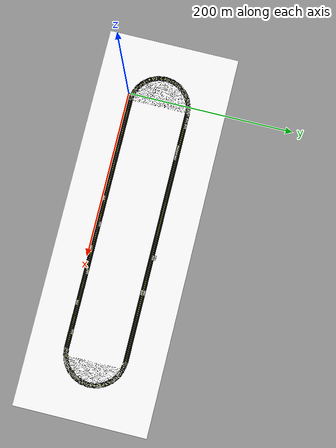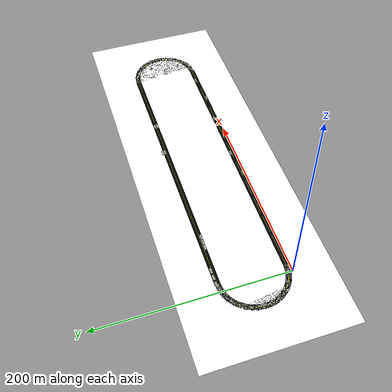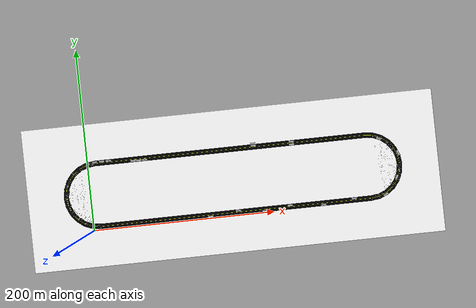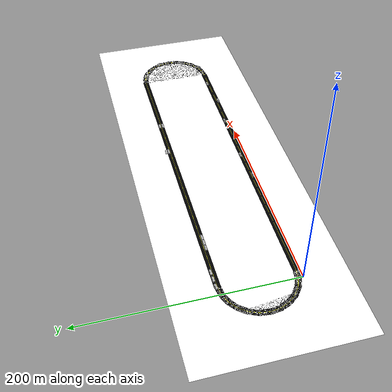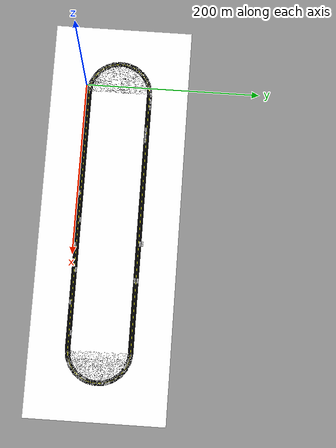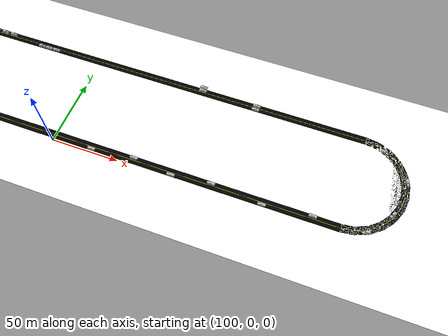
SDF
<sdf version="1.6">
 <world name="default">
  <light name="sun" type="directional">
   <pose>0 0 10 0 -0 0</pose>
   <diffuse>0.8 0.8 0.8 1</diffuse>
   <specular>0.2 0.2 0.2 1</specular>
   <attenuation>
    <range>1000</range>
    <constant>0.9</constant>
    <linear>0.01</linear>
    <quadratic>0.001</quadratic>
   </attenuation>
   <direction>-0.5 0.1 -0.9</direction>
  </light>
  <model name="LineTrack">
   <pose>0 0 1 0 -0 0</pose>
   <static>1</static>
   <link name="link">
    <inertial><mass>1000</mass></inertial>
    <collision name="collision">
     <geometry><mesh><uri>model://LineTrack/OvalTrack.dae</uri></mesh></geometry>
    </collision>
    <visual name="visual"><geometry><mesh><uri>model://LineTrack/OvalTrack.dae</uri></mesh></geometry></visual>
   </link>
  </model>
  <gravity>0 0 -9.8</gravity>
  <magnetic_field>6e-06 2.3e-05 -4.2e-05</magnetic_field>
  <atmosphere type="adiabatic"/>
  <physics name="default_physics" default="0" type="ode">
   <max_step_size>0.001</max_step_size>
   <real_time_factor>1</real_time_factor>
   <real_time_update_rate>400</real_time_update_rate>
  </physics>
  <scene><ambient>0.4 0.4 0.4 1</ambient><background>0.7 0.7 0.7 1</background><shadows>1</shadows></scene>
  <spherical_coordinates>
   <surface_model>EARTH_WGS84</surface_model>
   <latitude_deg>0</latitude_deg>
   <longitude_deg>0</longitude_deg>
   <elevation>0</elevation>
   <heading_deg>0</heading_deg>
  </spherical_coordinates>
  <model name="pickup">
   <static>1</static>
   <link name="link">
    <collision name="collision">
     <pose>0 0 0 0 0 -1.5708</pose>
     <geometry><mesh><uri>model://pickup/meshes/pickup.dae</uri></mesh></geometry>
    </collision>
    <visual name="visual">
     <pose>0 0 0 0 0 -1.5708</pose>
     <geometry><mesh><uri>model://pickup/meshes/pickup.dae</uri></mesh></geometry>
    </visual>
   </link>
   <pose>218.138 5.43507 1.00463 0 -0 0</pose>
  </model>
  <model name="pickup_0">
   <static>1</static>
   <link name="link">
    <collision name="collision">
     <pose>0 0 0 0 0 -1.5708</pose>
     <geometry><mesh><uri>model://pickup/meshes/pickup.dae</uri></mesh></geometry>
    </collision>
    <visual name="visual">
     <pose>0 0 0 0 0 -1.5708</pose>
     <geometry><mesh><uri>model://pickup/meshes/pickup.dae</uri></mesh></geometry>
    </visual>
   </link>
   <pose>289.273 5.74214 1.03055 0 -0 0</pose>
  </model>
  <model name="pickup_1">
   <static>1</static>
   <link name="link">
    <collision name="collision">
     <pose>0 0 0 0 0 -1.5708</pose>
     <geometry><mesh><uri>model://pickup/meshes/pickup.dae</uri></mesh></geometry>
    </collision>
    <visual name="visual">
     <pose>0 0 0 0 0 -1.5708</pose>
     <geometry><mesh><uri>model://pickup/meshes/pickup.dae</uri></mesh></geometry>
    </visual>
   </link>
   <pose>226.247 72.2388 1.15656 0 -0 3.13771</pose>
  </model>
  <model name="pickup_2">
   <static>1</static>
   <link name="link">
    <collision name="collision">
     <pose>0 0 0 0 0 -1.5708</pose>
     <geometry><mesh><uri>model://pickup/meshes/pickup.dae</uri></mesh></geometry>
    </collision>
    <visual name="visual">
     <pose>0 0 0 0 0 -1.5708</pose>
     <geometry><mesh><uri>model://pickup/meshes/pickup.dae</uri></mesh></geometry>
    </visual>
   </link>
   <pose>226.197 75.3885 1.13071 0 -0 3.12979</pose>
  </model>
  <model name="pickup_4">
   <static>1</static>
   <link name="link">
    <collision name="collision">
     <pose>0 0 0 0 0 -1.5708</pose>
     <geometry><mesh><uri>model://pickup/meshes/pickup.dae</uri></mesh></geometry>
    </collision>
    <visual name="visual">
     <pose>0 0 0 0 0 -1.5708</pose>
     <geometry><mesh><uri>model://pickup/meshes/pickup.dae</uri></mesh></geometry>
    </visual>
   </link>
   <pose>50.5523 72.4056 1.16641 0 0 -3.13999</pose>
  </model>
  <model name="pickup_5">
   <static>1</static>
   <link name="link">
    <collision name="collision">
     <pose>0 0 0 0 0 -1.5708</pose>
     <geometry><mesh><uri>model://pickup/meshes/pickup.dae</uri></mesh></geometry>
    </collision>
    <visual name="visual">
     <pose>0 0 0 0 0 -1.5708</pose>
     <geometry><mesh><uri>model://pickup/meshes/pickup.dae</uri></mesh></geometry>
    </visual>
   </link>
   <pose>56.7535 72.2778 1.18755 0 0 -3.13677</pose>
  </model>
  <model name="pickup_6">
   <static>1</static>
   <link name="link">
    <collision name="collision">
     <pose>0 0 0 0 0 -1.5708</pose>
     <geometry><mesh><uri>model://pickup/meshes/pickup.dae</uri></mesh></geometry>
    </collision>
    <visual name="visual">
     <pose>0 0 0 0 0 -1.5708</pose>
     <geometry><mesh><uri>model://pickup/meshes/pickup.dae</uri></mesh></geometry>
    </visual>
   </link>
   <pose>63.0659 72.3666 1.15065 0 0 -3.1398</pose>
  </model>
  <model name="pickup_3">
   <static>1</static>
   <link name="link">
    <collision name="collision">
     <pose>0 0 0 0 0 -1.5708</pose>
     <geometry><mesh><uri>model://pickup/meshes/pickup.dae</uri></mesh></geometry>
    </collision>
    <visual name="visual">
     <pose>0 0 0 0 0 -1.5708</pose>
     <geometry><mesh><uri>model://pickup/meshes/pickup.dae</uri></mesh></geometry>
    </visual>
   </link>
   <pose>255.075 2.2164 1.0373 0 -0 0</pose>
  </model>
  <model name="pickup_7">
   <static>1</static>
   <link name="link">
    <collision name="collision">
     <pose>0 0 0 0 0 -1.5708</pose>
     <geometry><mesh><uri>model://pickup/meshes/pickup.dae</uri></mesh></geometry>
    </collision>
    <visual name="visual">
     <pose>0 0 0 0 0 -1.5708</pose>
     <geometry><mesh><uri>model://pickup/meshes/pickup.dae</uri></mesh></geometry>
    </visual>
   </link>
   <pose>129.581 2.24078 1.00756 0 -0 0</pose>
  </model>
  <model name="pickup_8">
   <static>1</static>
   <link name="link">
    <collision name="collision">
     <pose>0 0 0 0 0 -1.5708</pose>
     <geometry><mesh><uri>model://pickup/meshes/pickup.dae</uri></mesh></geometry>
    </collision>
    <visual name="visual">
     <pose>0 0 0 0 0 -1.5708</pose>
     <geometry><mesh><uri>model://pickup/meshes/pickup.dae</uri></mesh></geometry>
    </visual>
   </link>
   <pose>189.906 2.19054 1.03415 0 -0 0</pose>
  </model>
  <model name="pickup_9">
   <static>1</static>
   <link name="link">
    <collision name="collision">
     <pose>0 0 0 0 0 -1.5708</pose>
     <geometry><mesh><uri>model://pickup/meshes/pickup.dae</uri></mesh></geometry>
    </collision>
    <visual name="visual">
     <pose>0 0 0 0 0 -1.5708</pose>
     <geometry><mesh><uri>model://pickup/meshes/pickup.dae</uri></mesh></geometry>
    </visual>
   </link>
   <pose>160.738 5.70315 1.00627 0 -0 0</pose>
  </model>
  <model name="pickup_10">
   <static>1</static>
   <link name="link">
    <collision name="collision">
     <pose>0 0 0 0 0 -1.5708</pose>
     <geometry><mesh><uri>model://pickup/meshes/pickup.dae</uri></mesh></geometry>
    </collision>
    <visual name="visual">
     <pose>0 0 0 0 0 -1.5708</pose>
     <geometry><mesh><uri>model://pickup/meshes/pickup.dae</uri></mesh></geometry>
    </visual>
   </link>
   <pose>324.623 6.53213 1.04172 0 -0 0.45014</pose>
  </model>
  <model name="pickup_11">
   <static>1</static>
   <link name="link">
    <collision name="collision">
     <pose>0 0 0 0 0 -1.5708</pose>
     <geometry><mesh><uri>model://pickup/meshes/pickup.dae</uri></mesh></geometry>
    </collision>
    <visual name="visual">
     <pose>0 0 0 0 0 -1.5708</pose>
     <geometry><mesh><uri>model://pickup/meshes/pickup.dae</uri></mesh></geometry>
    </visual>
   </link>
   <pose>338.324 24.3799 1.02987 0 -0 1.07756</pose>
  </model>
  <model name="pickup_12">
   <static>1</static>
   <link name="link">
    <collision name="collision">
     <pose>0 0 0 0 0 -1.5708</pose>
     <geometry><mesh><uri>model://pickup/meshes/pickup.dae</uri></mesh></geometry>
    </collision>
    <visual name="visual">
     <pose>0 0 0 0 0 -1.5708</pose>
     <geometry><mesh><uri>model://pickup/meshes/pickup.dae</uri></mesh></geometry>
    </visual>
   </link>
   <pose>342.345 50.977 1.04005 0 -0 1.97143</pose>
  </model>
  <model name="pickup_13">
   <static>1</static>
   <link name="link">
    <collision name="collision">
     <pose>0 0 0 0 0 -1.5708</pose>
     <geometry><mesh><uri>model://pickup/meshes/pickup.dae</uri></mesh></geometry>
    </collision>
    <visual name="visual">
     <pose>0 0 0 0 0 -1.5708</pose>
     <geometry><mesh><uri>model://pickup/meshes/pickup.dae</uri></mesh></geometry>
    </visual>
   </link>
   <pose>322.608 68.7944 1.24888 0 -0 2.73722</pose>
  </model>
  <model name="pickup_14">
   <static>1</static>
   <link name="link">
    <collision name="collision">
     <pose>0 0 0 0 0 -1.5708</pose>
     <geometry><mesh><uri>model://pickup/meshes/pickup.dae</uri></mesh></geometry>
    </collision>
    <visual name="visual">
     <pose>0 0 0 0 0 -1.5708</pose>
     <geometry><mesh><uri>model://pickup/meshes/pickup.dae</uri></mesh></geometry>
    </visual>
   </link>
   <pose>184.111 75.211 0.980947 0 -0 3.12479</pose>
  </model>
  <model name="pickup_15">
   <static>1</static>
   <link name="link">
    <collision name="collision">
     <pose>0 0 0 0 0 -1.5708</pose>
     <geometry><mesh><uri>model://pickup/meshes/pickup.dae</uri></mesh></geometry>
    </collision>
    <visual name="visual">
     <pose>0 0 0 0 0 -1.5708</pose>
     <geometry><mesh><uri>model://pickup/meshes/pickup.dae</uri></mesh></geometry>
    </visual>
   </link>
   <pose>183.851 77.7782 1.039 0 -0 3.12006</pose>
  </model>
  <model name="pickup_16">
   <static>1</static>
   <link name="link">
    <collision name="collision">
     <pose>0 0 0 0 0 -1.5708</pose>
     <geometry><mesh><uri>model://pickup/meshes/pickup.dae</uri></mesh></geometry>
    </collision>
    <visual name="visual">
     <pose>0 0 0 0 0 -1.5708</pose>
     <geometry><mesh><uri>model://pickup/meshes/pickup.dae</uri></mesh></geometry>
    </visual>
   </link>
   <pose>23.4144 75.2949 1.00919 0 -0 -3.11694</pose>
  </model>
  <model name="pickup_17">
   <static>1</static>
   <link name="link">
    <collision name="collision">
     <pose>0 0 0 0 0 -1.5708</pose>
     <geometry><mesh><uri>model://pickup/meshes/pickup.dae</uri></mesh></geometry>
    </collision>
    <visual name="visual">
     <pose>0 0 0 0 0 -1.5708</pose>
     <geometry><mesh><uri>model://pickup/meshes/pickup.dae</uri></mesh></geometry>
    </visual>
   </link>
   <pose>15.8753 75.2599 1.02099 0 -0 3.13016</pose>
  </model>
  <model name="pickup_18">
   <static>1</static>
   <link name="link">
    <collision name="collision">
     <pose>0 0 0 0 0 -1.5708</pose>
     <geometry><mesh><uri>model://pickup/meshes/pickup.dae</uri></mesh></geometry>
    </collision>
    <visual name="visual">
     <pose>0 0 0 0 0 -1.5708</pose>
     <geometry><mesh><uri>model://pickup/meshes/pickup.dae</uri></mesh></geometry>
    </visual>
   </link>
   <pose>7.9132 75.1429 1.01889 0 -0 -2.99819</pose>
  </model>
 </world>
</sdf>
